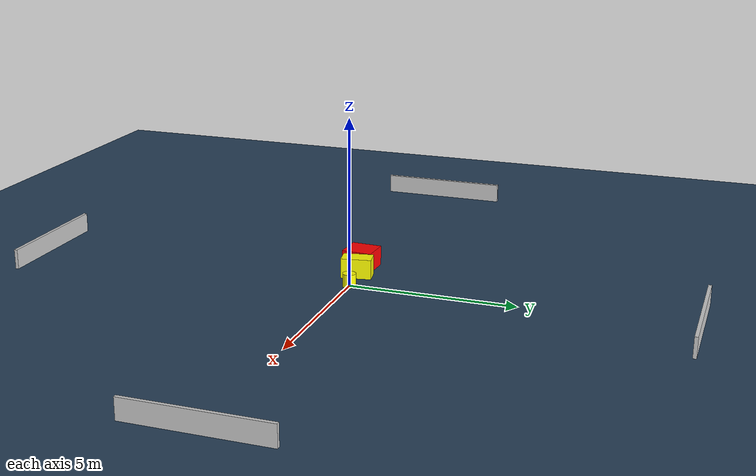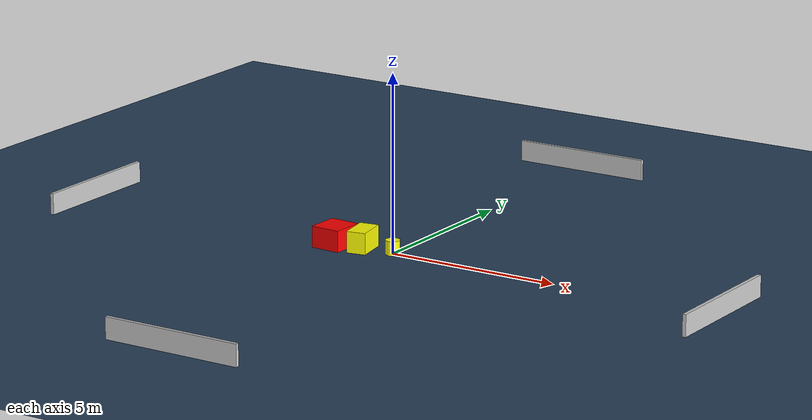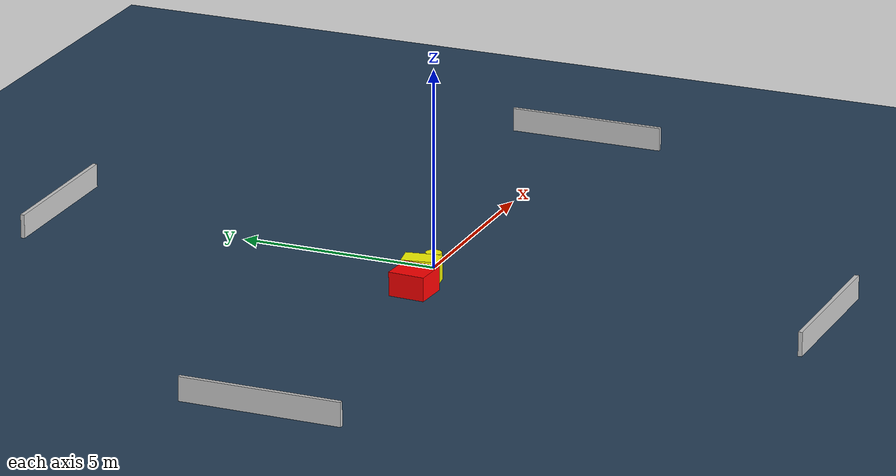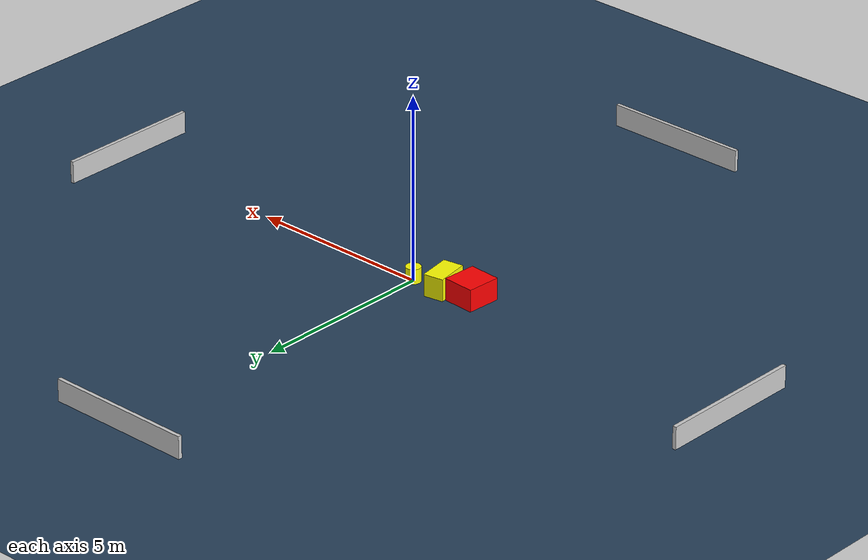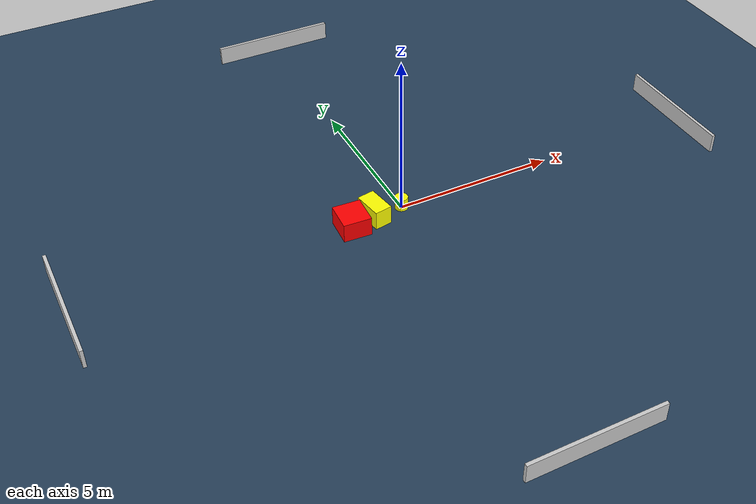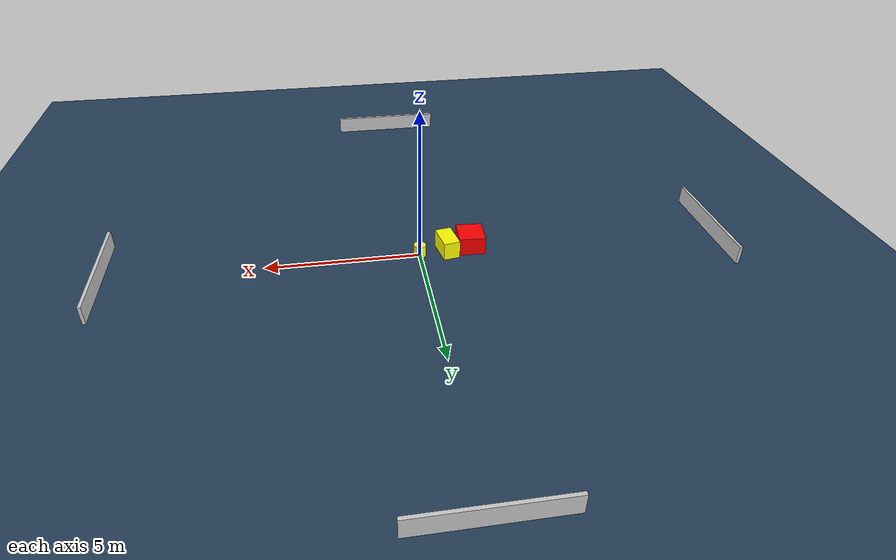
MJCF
<?xml version="1.0" ?>
<mujoco model="generated_environment">
  <option timestep="0.01" integrator="RK4" cone="elliptic"/>
  <default>
    <geom density="1"/>
  </default>
  <asset>
    <texture builtin="gradient" height="3072" name="skybox" rgb1="0.3 0.5 0.7" rgb2="0 0 0" type="skybox" width="512"/>
    <texture builtin="checker" height="300" name="groundplane" rgb1="0.2 0.3 0.4" rgb2="0.1 0.2 0.3" type="2d" width="300"/>
    <material name="groundplane" reflectance="0.2" texrepeat="5 5" texture="groundplane"/>
  </asset>
  <worldbody>
    <light dir="0 0 -1" directional="true" pos="0 0 1.5"/>
    <geom condim="3" friction="0.5 0.005 0.001" material="groundplane" name="floor" pos="0 0 0" size="0 0 0.05" type="plane"/>
    <body name="walls">
      <geom name="wall_1" condim="4" pos="-10.0 0.0 0.3" rgba="0.800000011920929 0.800000011920929 0.800000011920929 1.0" size="0.05 2.0 0.3" type="box"/>
      <geom name="wall_2" condim="4" pos="10.0 0.0 0.3" rgba="0.800000011920929 0.800000011920929 0.800000011920929 1.0" size="0.05 2.0 0.3" type="box"/>
      <geom name="wall_3" condim="4" pos="0.0 -10.0 0.3" rgba="0.800000011920929 0.800000011920929 0.800000011920929 1.0" size="2.0 0.05 0.3" type="box"/>
      <geom name="wall_4" condim="4" pos="0.0 10.0 0.3" rgba="0.800000011920929 0.800000011920929 0.800000011920929 1.0" size="2.0 0.05 0.3" type="box"/>
    </body>
    <body name="robot">
      <joint name="joint_x" type="slide" pos="0 0 0" axis="1 0 0"/>
      <joint name="joint_y" type="slide" pos="0 0 0" axis="0 1 0"/>
      <geom name="robot" type="cylinder" pos="0.0 0.0 0.2" size="0.2 0.2 0.0" mass="5.0" friction="1.0 0.005 0.0001" condim="4" rgba="1.0 1.0 0.0 1.0"/>
    </body>
    <body name="obstacle_1_movable">
      <geom name="obstacle_1_movable" condim="4" pos="-0.9182446742785872 -0.07841720629544133 0.3" euler="0 0 189.6001289188102" friction="0.0 0.005 0.001" rgba="1.0 1.0 0.0 1.0" size="0.2709430832897958 0.45447702543307966 0.3" type="box" mass="0.1"/>
      <joint type="free"/>
    </body>
    <body name="obstacle_2_static">
      <geom name="obstacle_2_static" condim="4" pos="-1.71471149346592 -0.2203365313115773 0.3" euler="0 0 86.9136584522847" friction="0.0 0.005 0.001" rgba="1.0 0.0 0.0 1.0" size="0.45843098379322833 0.4311635565157701 0.3" type="box"/>
    </body>
  </worldbody>
  <actuator>
    <motor name="actuator_x" joint="joint_x" gear="1" ctrlrange="-1 1"/>
    <motor name="actuator_y" joint="joint_y" gear="1" ctrlrange="-1 1"/>
  </actuator>
</mujoco>
